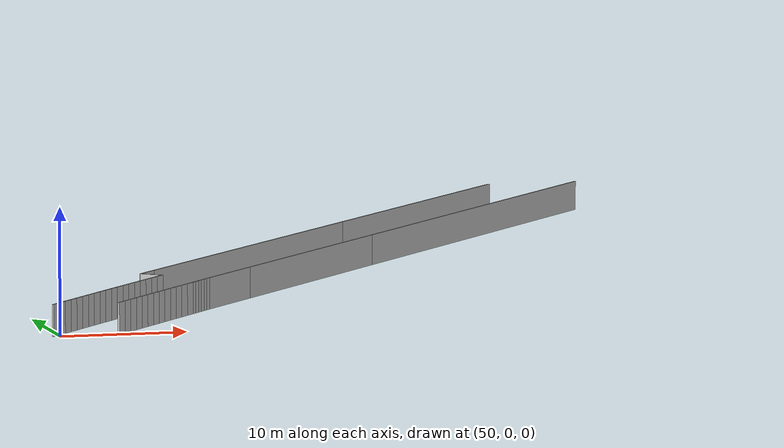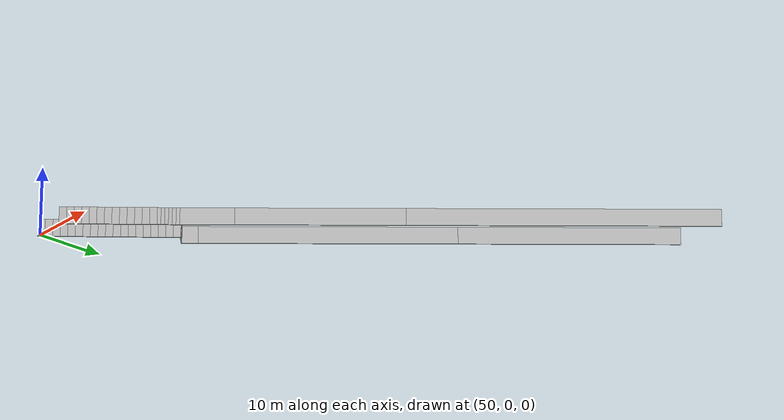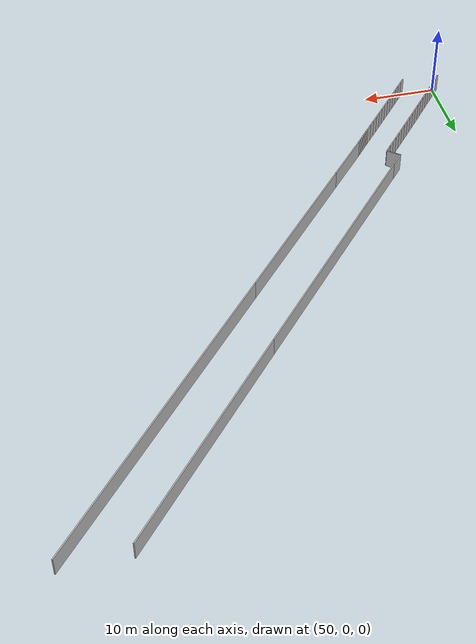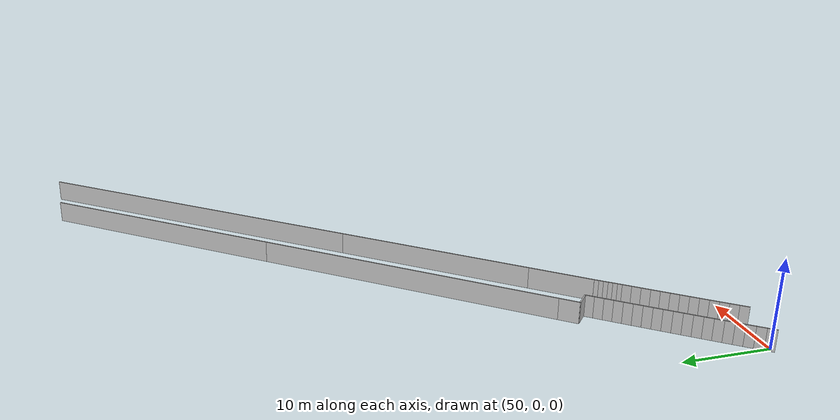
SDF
<?xml version="1.0" ?>
<sdf version="1.6">
  <model name="sps_0319">
    <pose frame="">0 0 0 0 -0 0</pose>
    <static>1</static>
    <self_collide>0</self_collide>
    <allow_auto_disable>0</allow_auto_disable>
    <link name="Wall35">
      <kinematic>0</kinematic>
      <gravity>1</gravity>
      <self_collide>0</self_collide>
      <collision name="collision">
        <geometry>
          <box>
            <size>30.2683 0.15 2.5</size>
          </box>
        </geometry>
        <pose frame="">0 0 0 0 -0 0</pose>
      </collision>
      <visual name="visual">
        <geometry>
          <box>
            <size>30.2683 0.15 2.5</size>
          </box>
        </geometry>
        <pose frame="">0 0 0 0 -0 0</pose>
        <cast_shadows>1</cast_shadows>
        <transparency>0.0</transparency>
      </visual>
      <pose frame="">94.2533 56.3468 1.25 0 0 -2.27376</pose>
    </link>
    <link name="Wall36">
      <kinematic>0</kinematic>
      <gravity>1</gravity>
      <self_collide>0</self_collide>
      <collision name="collision">
        <geometry>
          <box>
            <size>35.2684 0.15 2.5</size>
          </box>
        </geometry>
        <pose frame="">0 0 0 0 -0 0</pose>
      </collision>
      <visual name="visual">
        <geometry>
          <box>
            <size>35.2684 0.15 2.5</size>
          </box>
        </geometry>
        <pose frame="">0 0 0 0 -0 0</pose>
        <cast_shadows>1</cast_shadows>
        <transparency>0.0</transparency>
      </visual>
      <pose frame="">73.0693 31.3468 1.25 0 0 -2.27376</pose>
    </link>
    <link name="Wall37">
      <kinematic>0</kinematic>
      <gravity>1</gravity>
      <self_collide>0</self_collide>
      <collision name="collision">
        <geometry>
          <box>
            <size>2.2665 0.15 2.5</size>
          </box>
        </geometry>
        <pose frame="">0 0 0 0 -0 0</pose>
      </collision>
      <visual name="visual">
        <geometry>
          <box>
            <size>2.2665 0.15 2.5</size>
          </box>
        </geometry>
        <pose frame="">0 0 0 0 -0 0</pose>
        <cast_shadows>1</cast_shadows>
        <transparency>0.0</transparency>
      </visual>
      <pose frame="">60.9365 17.0285 1.25 0 0 -2.27376</pose>
    </link>
    <link name="Wall38">
      <kinematic>0</kinematic>
      <gravity>1</gravity>
      <self_collide>0</self_collide>
      <collision name="collision">
        <geometry>
          <box>
            <size>7.37648 0.15 2.5</size>
          </box>
        </geometry>
        <pose frame="">0 0 0 0 -0 0</pose>
      </collision>
      <visual name="visual">
        <geometry>
          <box>
            <size>7.37648 0.15 2.5</size>
          </box>
        </geometry>
        <pose frame="">0 0 0 0 -0 0</pose>
        <cast_shadows>1</cast_shadows>
        <transparency>0.0</transparency>
      </visual>
      <pose frame="">67.1869 15.0785 1.25 0 -0 0.868142</pose>
    </link>
    <link name="Wall39">
      <kinematic>0</kinematic>
      <gravity>1</gravity>
      <self_collide>0</self_collide>
      <collision name="collision">
        <geometry>
          <box>
            <size>23.0547 0.15 2.5</size>
          </box>
        </geometry>
        <pose frame="">0 0 0 0 -0 0</pose>
      </collision>
      <visual name="visual">
        <geometry>
          <box>
            <size>23.0547 0.15 2.5</size>
          </box>
        </geometry>
        <pose frame="">0 0 0 0 -0 0</pose>
        <cast_shadows>1</cast_shadows>
        <transparency>0.0</transparency>
      </visual>
      <pose frame="">77.0199 26.6899 1.25 0 -0 0.868142</pose>
    </link>
    <link name="Wall40">
      <kinematic>0</kinematic>
      <gravity>1</gravity>
      <self_collide>0</self_collide>
      <collision name="collision">
        <geometry>
          <box>
            <size>42.465 0.15 2.5</size>
          </box>
        </geometry>
        <pose frame="">0 0 0 0 -0 0</pose>
      </collision>
      <visual name="visual">
        <geometry>
          <box>
            <size>42.465 0.15 2.5</size>
          </box>
        </geometry>
        <pose frame="">0 0 0 0 -0 0</pose>
        <cast_shadows>1</cast_shadows>
        <transparency>0.0</transparency>
      </visual>
      <pose frame="">98.1909 51.6899 1.25 0 -0 0.868142</pose>
    </link>
    <link name="Wall368">
      <kinematic>0</kinematic>
      <gravity>1</gravity>
      <self_collide>0</self_collide>
      <collision name="collision">
        <geometry>
          <box>
            <size>1.92847 0.15 2.5</size>
          </box>
        </geometry>
        <pose frame="">0 0 0 0 -0 0</pose>
      </collision>
      <visual name="visual">
        <geometry>
          <box>
            <size>1.92847 0.15 2.5</size>
          </box>
        </geometry>
        <pose frame="">0 0 0 0 -0 0</pose>
        <cast_shadows>1</cast_shadows>
        <transparency>0.0</transparency>
      </visual>
      <pose frame="">60.9385 15.5393 1.25 0 0 -0.704654</pose>
    </link>
    <link name="Wall10012">
      <kinematic>0</kinematic>
      <gravity>1</gravity>
      <self_collide>0</self_collide>
      <collision name="collision">
        <geometry>
          <box>
            <size>1.01925 0.15 2.5</size>
          </box>
        </geometry>
        <pose frame="">0 0 0 0 -0 0</pose>
      </collision>
      <visual name="visual">
        <geometry>
          <box>
            <size>1.01925 0.15 2.5</size>
          </box>
        </geometry>
        <pose frame="">0 0 0 0 -0 0</pose>
        <cast_shadows>1</cast_shadows>
        <transparency>0.0</transparency>
      </visual>
      <pose frame="">61.346 14.5239 1.25 0 0 -2.26767</pose>
    </link>
    <link name="Wall10013">
      <kinematic>0</kinematic>
      <gravity>1</gravity>
      <self_collide>0</self_collide>
      <collision name="collision">
        <geometry>
          <box>
            <size>1.0192 0.15 2.5</size>
          </box>
        </geometry>
        <pose frame="">0 0 0 0 -0 0</pose>
      </collision>
      <visual name="visual">
        <geometry>
          <box>
            <size>1.0192 0.15 2.5</size>
          </box>
        </geometry>
        <pose frame="">0 0 0 0 -0 0</pose>
        <cast_shadows>1</cast_shadows>
        <transparency>0.0</transparency>
      </visual>
      <pose frame="">60.6922 13.742 1.25 0 0 -2.26677</pose>
    </link>
    <link name="Wall10014">
      <kinematic>0</kinematic>
      <gravity>1</gravity>
      <self_collide>0</self_collide>
      <collision name="collision">
        <geometry>
          <box>
            <size>1.01886 0.15 2.5</size>
          </box>
        </geometry>
        <pose frame="">0 0 0 0 -0 0</pose>
      </collision>
      <visual name="visual">
        <geometry>
          <box>
            <size>1.01886 0.15 2.5</size>
          </box>
        </geometry>
        <pose frame="">0 0 0 0 -0 0</pose>
        <cast_shadows>1</cast_shadows>
        <transparency>0.0</transparency>
      </visual>
      <pose frame="">60.0392 12.9596 1.25 0 0 -2.26572</pose>
    </link>
    <link name="Wall10015">
      <kinematic>0</kinematic>
      <gravity>1</gravity>
      <self_collide>0</self_collide>
      <collision name="collision">
        <geometry>
          <box>
            <size>1.01911 0.15 2.5</size>
          </box>
        </geometry>
        <pose frame="">0 0 0 0 -0 0</pose>
      </collision>
      <visual name="visual">
        <geometry>
          <box>
            <size>1.01911 0.15 2.5</size>
          </box>
        </geometry>
        <pose frame="">0 0 0 0 -0 0</pose>
        <cast_shadows>1</cast_shadows>
        <transparency>0.0</transparency>
      </visual>
      <pose frame="">59.3873 12.1765 1.25 0 0 -2.26442</pose>
    </link>
    <link name="Wall10016">
      <kinematic>0</kinematic>
      <gravity>1</gravity>
      <self_collide>0</self_collide>
      <collision name="collision">
        <geometry>
          <box>
            <size>1.01921 0.15 2.5</size>
          </box>
        </geometry>
        <pose frame="">0 0 0 0 -0 0</pose>
      </collision>
      <visual name="visual">
        <geometry>
          <box>
            <size>1.01921 0.15 2.5</size>
          </box>
        </geometry>
        <pose frame="">0 0 0 0 -0 0</pose>
        <cast_shadows>1</cast_shadows>
        <transparency>0.0</transparency>
      </visual>
      <pose frame="">58.7361 11.3925 1.25 0 0 -2.26341</pose>
    </link>
    <link name="Wall10017">
      <kinematic>0</kinematic>
      <gravity>1</gravity>
      <self_collide>0</self_collide>
      <collision name="collision">
        <geometry>
          <box>
            <size>1.0191 0.15 2.5</size>
          </box>
        </geometry>
        <pose frame="">0 0 0 0 -0 0</pose>
      </collision>
      <visual name="visual">
        <geometry>
          <box>
            <size>1.0191 0.15 2.5</size>
          </box>
        </geometry>
        <pose frame="">0 0 0 0 -0 0</pose>
        <cast_shadows>1</cast_shadows>
        <transparency>0.0</transparency>
      </visual>
      <pose frame="">58.0857 10.6078 1.25 0 0 -2.26225</pose>
    </link>
    <link name="Wall10018">
      <kinematic>0</kinematic>
      <gravity>1</gravity>
      <self_collide>0</self_collide>
      <collision name="collision">
        <geometry>
          <box>
            <size>1.01912 0.15 2.5</size>
          </box>
        </geometry>
        <pose frame="">0 0 0 0 -0 0</pose>
      </collision>
      <visual name="visual">
        <geometry>
          <box>
            <size>1.01912 0.15 2.5</size>
          </box>
        </geometry>
        <pose frame="">0 0 0 0 -0 0</pose>
        <cast_shadows>1</cast_shadows>
        <transparency>0.0</transparency>
      </visual>
      <pose frame="">57.4363 9.8224 1.25 0 0 -2.26115</pose>
    </link>
    <link name="Wall10019">
      <kinematic>0</kinematic>
      <gravity>1</gravity>
      <self_collide>0</self_collide>
      <collision name="collision">
        <geometry>
          <box>
            <size>1.01925 0.15 2.5</size>
          </box>
        </geometry>
        <pose frame="">0 0 0 0 -0 0</pose>
      </collision>
      <visual name="visual">
        <geometry>
          <box>
            <size>1.01925 0.15 2.5</size>
          </box>
        </geometry>
        <pose frame="">0 0 0 0 -0 0</pose>
        <cast_shadows>1</cast_shadows>
        <transparency>0.0</transparency>
      </visual>
      <pose frame="">56.7877 9.0363 1.25 0 0 -2.26027</pose>
    </link>
    <link name="Wall10020">
      <kinematic>0</kinematic>
      <gravity>1</gravity>
      <self_collide>0</self_collide>
      <collision name="collision">
        <geometry>
          <box>
            <size>1.0192 0.15 2.5</size>
          </box>
        </geometry>
        <pose frame="">0 0 0 0 -0 0</pose>
      </collision>
      <visual name="visual">
        <geometry>
          <box>
            <size>1.0192 0.15 2.5</size>
          </box>
        </geometry>
        <pose frame="">0 0 0 0 -0 0</pose>
        <cast_shadows>1</cast_shadows>
        <transparency>0.0</transparency>
      </visual>
      <pose frame="">56.1398 8.2495 1.25 0 0 -2.25907</pose>
    </link>
    <link name="Wall10021">
      <kinematic>0</kinematic>
      <gravity>1</gravity>
      <self_collide>0</self_collide>
      <collision name="collision">
        <geometry>
          <box>
            <size>1.01921 0.15 2.5</size>
          </box>
        </geometry>
        <pose frame="">0 0 0 0 -0 0</pose>
      </collision>
      <visual name="visual">
        <geometry>
          <box>
            <size>1.01921 0.15 2.5</size>
          </box>
        </geometry>
        <pose frame="">0 0 0 0 -0 0</pose>
        <cast_shadows>1</cast_shadows>
        <transparency>0.0</transparency>
      </visual>
      <pose frame="">55.4928 7.46199 1.25 0 0 -2.25805</pose>
    </link>
    <link name="Wall10022">
      <kinematic>0</kinematic>
      <gravity>1</gravity>
      <self_collide>0</self_collide>
      <collision name="collision">
        <geometry>
          <box>
            <size>1.01902 0.15 2.5</size>
          </box>
        </geometry>
        <pose frame="">0 0 0 0 -0 0</pose>
      </collision>
      <visual name="visual">
        <geometry>
          <box>
            <size>1.01902 0.15 2.5</size>
          </box>
        </geometry>
        <pose frame="">0 0 0 0 -0 0</pose>
        <cast_shadows>1</cast_shadows>
        <transparency>0.0</transparency>
      </visual>
      <pose frame="">54.8466 6.67387 1.25 0 0 -2.25697</pose>
    </link>
    <link name="Wall10023">
      <kinematic>0</kinematic>
      <gravity>1</gravity>
      <self_collide>0</self_collide>
      <collision name="collision">
        <geometry>
          <box>
            <size>1.01909 0.15 2.5</size>
          </box>
        </geometry>
        <pose frame="">0 0 0 0 -0 0</pose>
      </collision>
      <visual name="visual">
        <geometry>
          <box>
            <size>1.01909 0.15 2.5</size>
          </box>
        </geometry>
        <pose frame="">0 0 0 0 -0 0</pose>
        <cast_shadows>1</cast_shadows>
        <transparency>0.0</transparency>
      </visual>
      <pose frame="">54.2014 5.88509 1.25 0 0 -2.25583</pose>
    </link>
    <link name="Wall10024">
      <kinematic>0</kinematic>
      <gravity>1</gravity>
      <self_collide>0</self_collide>
      <collision name="collision">
        <geometry>
          <box>
            <size>1.0192 0.15 2.5</size>
          </box>
        </geometry>
        <pose frame="">0 0 0 0 -0 0</pose>
      </collision>
      <visual name="visual">
        <geometry>
          <box>
            <size>1.0192 0.15 2.5</size>
          </box>
        </geometry>
        <pose frame="">0 0 0 0 -0 0</pose>
        <cast_shadows>1</cast_shadows>
        <transparency>0.0</transparency>
      </visual>
      <pose frame="">53.5571 5.0955 1.25 0 0 -2.25473</pose>
    </link>
    <link name="Wall10025">
      <kinematic>0</kinematic>
      <gravity>1</gravity>
      <self_collide>0</self_collide>
      <collision name="collision">
        <geometry>
          <box>
            <size>1.01922 0.15 2.5</size>
          </box>
        </geometry>
        <pose frame="">0 0 0 0 -0 0</pose>
      </collision>
      <visual name="visual">
        <geometry>
          <box>
            <size>1.01922 0.15 2.5</size>
          </box>
        </geometry>
        <pose frame="">0 0 0 0 -0 0</pose>
        <cast_shadows>1</cast_shadows>
        <transparency>0.0</transparency>
      </visual>
      <pose frame="">52.9135 4.30519 1.25 0 0 -2.25371</pose>
    </link>
    <link name="Wall10026">
      <kinematic>0</kinematic>
      <gravity>1</gravity>
      <self_collide>0</self_collide>
      <collision name="collision">
        <geometry>
          <box>
            <size>1.01903 0.15 2.5</size>
          </box>
        </geometry>
        <pose frame="">0 0 0 0 -0 0</pose>
      </collision>
      <visual name="visual">
        <geometry>
          <box>
            <size>1.01903 0.15 2.5</size>
          </box>
        </geometry>
        <pose frame="">0 0 0 0 -0 0</pose>
        <cast_shadows>1</cast_shadows>
        <transparency>0.0</transparency>
      </visual>
      <pose frame="">52.2708 3.51427 1.25 0 0 -2.25263</pose>
    </link>
    <link name="Wall10027">
      <kinematic>0</kinematic>
      <gravity>1</gravity>
      <self_collide>0</self_collide>
      <collision name="collision">
        <geometry>
          <box>
            <size>1.01927 0.15 2.5</size>
          </box>
        </geometry>
        <pose frame="">0 0 0 0 -0 0</pose>
      </collision>
      <visual name="visual">
        <geometry>
          <box>
            <size>1.01927 0.15 2.5</size>
          </box>
        </geometry>
        <pose frame="">0 0 0 0 -0 0</pose>
        <cast_shadows>1</cast_shadows>
        <transparency>0.0</transparency>
      </visual>
      <pose frame="">51.6289 2.72267 1.25 0 0 -2.25167</pose>
    </link>
    <link name="Wall10028">
      <kinematic>0</kinematic>
      <gravity>1</gravity>
      <self_collide>0</self_collide>
      <collision name="collision">
        <geometry>
          <box>
            <size>1.01927 0.15 2.5</size>
          </box>
        </geometry>
        <pose frame="">0 0 0 0 -0 0</pose>
      </collision>
      <visual name="visual">
        <geometry>
          <box>
            <size>1.01927 0.15 2.5</size>
          </box>
        </geometry>
        <pose frame="">0 0 0 0 -0 0</pose>
        <cast_shadows>1</cast_shadows>
        <transparency>0.0</transparency>
      </visual>
      <pose frame="">50.9878 1.93028 1.25 0 0 -2.25044</pose>
    </link>
    <link name="Wall10029">
      <kinematic>0</kinematic>
      <gravity>1</gravity>
      <self_collide>0</self_collide>
      <collision name="collision">
        <geometry>
          <box>
            <size>1.01921 0.15 2.5</size>
          </box>
        </geometry>
        <pose frame="">0 0 0 0 -0 0</pose>
      </collision>
      <visual name="visual">
        <geometry>
          <box>
            <size>1.01921 0.15 2.5</size>
          </box>
        </geometry>
        <pose frame="">0 0 0 0 -0 0</pose>
        <cast_shadows>1</cast_shadows>
        <transparency>0.0</transparency>
      </visual>
      <pose frame="">50.3476 1.13719 1.25 0 0 -2.24941</pose>
    </link>
    <link name="Wall10030">
      <kinematic>0</kinematic>
      <gravity>1</gravity>
      <self_collide>0</self_collide>
      <collision name="collision">
        <geometry>
          <box>
            <size>1.01907 0.15 2.5</size>
          </box>
        </geometry>
        <pose frame="">0 0 0 0 -0 0</pose>
      </collision>
      <visual name="visual">
        <geometry>
          <box>
            <size>1.01907 0.15 2.5</size>
          </box>
        </geometry>
        <pose frame="">0 0 0 0 -0 0</pose>
        <cast_shadows>1</cast_shadows>
        <transparency>0.0</transparency>
      </visual>
      <pose frame="">49.7083 0.34349 1.25 0 0 -2.24829</pose>
    </link>
    <link name="Wall10054">
      <kinematic>0</kinematic>
      <gravity>1</gravity>
      <self_collide>0</self_collide>
      <collision name="collision">
        <geometry>
          <box>
            <size>0.507656 0.15 2.5</size>
          </box>
        </geometry>
        <pose frame="">0 0 0 0 -0 0</pose>
      </collision>
      <visual name="visual">
        <geometry>
          <box>
            <size>0.507656 0.15 2.5</size>
          </box>
        </geometry>
        <pose frame="">0 0 0 0 -0 0</pose>
        <cast_shadows>1</cast_shadows>
        <transparency>0.0</transparency>
      </visual>
      <pose frame="">64.6415 12.0684 1.25 0 0 -2.26246</pose>
    </link>
    <link name="Wall10055">
      <kinematic>0</kinematic>
      <gravity>1</gravity>
      <self_collide>0</self_collide>
      <collision name="collision">
        <geometry>
          <box>
            <size>0.507545 0.15 2.5</size>
          </box>
        </geometry>
        <pose frame="">0 0 0 0 -0 0</pose>
      </collision>
      <visual name="visual">
        <geometry>
          <box>
            <size>0.507545 0.15 2.5</size>
          </box>
        </geometry>
        <pose frame="">0 0 0 0 -0 0</pose>
        <cast_shadows>1</cast_shadows>
        <transparency>0.0</transparency>
      </visual>
      <pose frame="">64.3191 11.6764 1.25 0 0 -2.25594</pose>
    </link>
    <link name="Wall10056">
      <kinematic>0</kinematic>
      <gravity>1</gravity>
      <self_collide>0</self_collide>
      <collision name="collision">
        <geometry>
          <box>
            <size>0.50752 0.15 2.5</size>
          </box>
        </geometry>
        <pose frame="">0 0 0 0 -0 0</pose>
      </collision>
      <visual name="visual">
        <geometry>
          <box>
            <size>0.50752 0.15 2.5</size>
          </box>
        </geometry>
        <pose frame="">0 0 0 0 -0 0</pose>
        <cast_shadows>1</cast_shadows>
        <transparency>0.0</transparency>
      </visual>
      <pose frame="">63.9993 11.2823 1.25 0 0 -2.24901</pose>
    </link>
    <link name="Wall10057">
      <kinematic>0</kinematic>
      <gravity>1</gravity>
      <self_collide>0</self_collide>
      <collision name="collision">
        <geometry>
          <box>
            <size>0.507367 0.15 2.5</size>
          </box>
        </geometry>
        <pose frame="">0 0 0 0 -0 0</pose>
      </collision>
      <visual name="visual">
        <geometry>
          <box>
            <size>0.507367 0.15 2.5</size>
          </box>
        </geometry>
        <pose frame="">0 0 0 0 -0 0</pose>
        <cast_shadows>1</cast_shadows>
        <transparency>0.0</transparency>
      </visual>
      <pose frame="">63.681 10.8871 1.25 0 0 -2.24864</pose>
    </link>
    <link name="Wall10058">
      <kinematic>0</kinematic>
      <gravity>1</gravity>
      <self_collide>0</self_collide>
      <collision name="collision">
        <geometry>
          <box>
            <size>0.507507 0.15 2.5</size>
          </box>
        </geometry>
        <pose frame="">0 0 0 0 -0 0</pose>
      </collision>
      <visual name="visual">
        <geometry>
          <box>
            <size>0.507507 0.15 2.5</size>
          </box>
        </geometry>
        <pose frame="">0 0 0 0 -0 0</pose>
        <cast_shadows>1</cast_shadows>
        <transparency>0.0</transparency>
      </visual>
      <pose frame="">63.3617 10.4927 1.25 0 0 -2.25414</pose>
    </link>
    <link name="Wall10059">
      <kinematic>0</kinematic>
      <gravity>1</gravity>
      <self_collide>0</self_collide>
      <collision name="collision">
        <geometry>
          <box>
            <size>0.50735 0.15 2.5</size>
          </box>
        </geometry>
        <pose frame="">0 0 0 0 -0 0</pose>
      </collision>
      <visual name="visual">
        <geometry>
          <box>
            <size>0.50735 0.15 2.5</size>
          </box>
        </geometry>
        <pose frame="">0 0 0 0 -0 0</pose>
        <cast_shadows>1</cast_shadows>
        <transparency>0.0</transparency>
      </visual>
      <pose frame="">63.0402 10.1001 1.25 0 0 -2.25984</pose>
    </link>
    <link name="Wall10060">
      <kinematic>0</kinematic>
      <gravity>1</gravity>
      <self_collide>0</self_collide>
      <collision name="collision">
        <geometry>
          <box>
            <size>1.01436 0.15 2.5</size>
          </box>
        </geometry>
        <pose frame="">0 0 0 0 -0 0</pose>
      </collision>
      <visual name="visual">
        <geometry>
          <box>
            <size>1.01436 0.15 2.5</size>
          </box>
        </geometry>
        <pose frame="">0 0 0 0 -0 0</pose>
        <cast_shadows>1</cast_shadows>
        <transparency>0.0</transparency>
      </visual>
      <pose frame="">62.5546 9.5143 1.25 0 0 -2.26433</pose>
    </link>
    <link name="Wall10061">
      <kinematic>0</kinematic>
      <gravity>1</gravity>
      <self_collide>0</self_collide>
      <collision name="collision">
        <geometry>
          <box>
            <size>1.01397 0.15 2.5</size>
          </box>
        </geometry>
        <pose frame="">0 0 0 0 -0 0</pose>
      </collision>
      <visual name="visual">
        <geometry>
          <box>
            <size>1.01397 0.15 2.5</size>
          </box>
        </geometry>
        <pose frame="">0 0 0 0 -0 0</pose>
        <cast_shadows>1</cast_shadows>
        <transparency>0.0</transparency>
      </visual>
      <pose frame="">61.9067 8.73408 1.25 0 0 -2.26331</pose>
    </link>
    <link name="Wall10062">
      <kinematic>0</kinematic>
      <gravity>1</gravity>
      <self_collide>0</self_collide>
      <collision name="collision">
        <geometry>
          <box>
            <size>1.01434 0.15 2.5</size>
          </box>
        </geometry>
        <pose frame="">0 0 0 0 -0 0</pose>
      </collision>
      <visual name="visual">
        <geometry>
          <box>
            <size>1.01434 0.15 2.5</size>
          </box>
        </geometry>
        <pose frame="">0 0 0 0 -0 0</pose>
        <cast_shadows>1</cast_shadows>
        <transparency>0.0</transparency>
      </visual>
      <pose frame="">61.2596 7.9532 1.25 0 0 -2.26224</pose>
    </link>
    <link name="Wall10063">
      <kinematic>0</kinematic>
      <gravity>1</gravity>
      <self_collide>0</self_collide>
      <collision name="collision">
        <geometry>
          <box>
            <size>1.01423 0.15 2.5</size>
          </box>
        </geometry>
        <pose frame="">0 0 0 0 -0 0</pose>
      </collision>
      <visual name="visual">
        <geometry>
          <box>
            <size>1.01423 0.15 2.5</size>
          </box>
        </geometry>
        <pose frame="">0 0 0 0 -0 0</pose>
        <cast_shadows>1</cast_shadows>
        <transparency>0.0</transparency>
      </visual>
      <pose frame="">60.6133 7.17149 1.25 0 0 -2.26107</pose>
    </link>
    <link name="Wall10064">
      <kinematic>0</kinematic>
      <gravity>1</gravity>
      <self_collide>0</self_collide>
      <collision name="collision">
        <geometry>
          <box>
            <size>1.01411 0.15 2.5</size>
          </box>
        </geometry>
        <pose frame="">0 0 0 0 -0 0</pose>
      </collision>
      <visual name="visual">
        <geometry>
          <box>
            <size>1.01411 0.15 2.5</size>
          </box>
        </geometry>
        <pose frame="">0 0 0 0 -0 0</pose>
        <cast_shadows>1</cast_shadows>
        <transparency>0.0</transparency>
      </visual>
      <pose frame="">59.9679 6.38917 1.25 0 0 -2.26008</pose>
    </link>
    <link name="Wall10065">
      <kinematic>0</kinematic>
      <gravity>1</gravity>
      <self_collide>0</self_collide>
      <collision name="collision">
        <geometry>
          <box>
            <size>1.01426 0.15 2.5</size>
          </box>
        </geometry>
        <pose frame="">0 0 0 0 -0 0</pose>
      </collision>
      <visual name="visual">
        <geometry>
          <box>
            <size>1.01426 0.15 2.5</size>
          </box>
        </geometry>
        <pose frame="">0 0 0 0 -0 0</pose>
        <cast_shadows>1</cast_shadows>
        <transparency>0.0</transparency>
      </visual>
      <pose frame="">59.3234 5.60618 1.25 0 0 -2.25902</pose>
    </link>
    <link name="Wall10066">
      <kinematic>0</kinematic>
      <gravity>1</gravity>
      <self_collide>0</self_collide>
      <collision name="collision">
        <geometry>
          <box>
            <size>1.01407 0.15 2.5</size>
          </box>
        </geometry>
        <pose frame="">0 0 0 0 -0 0</pose>
      </collision>
      <visual name="visual">
        <geometry>
          <box>
            <size>1.01407 0.15 2.5</size>
          </box>
        </geometry>
        <pose frame="">0 0 0 0 -0 0</pose>
        <cast_shadows>1</cast_shadows>
        <transparency>0.0</transparency>
      </visual>
      <pose frame="">58.6796 4.82249 1.25 0 0 -2.25785</pose>
    </link>
    <link name="Wall10067">
      <kinematic>0</kinematic>
      <gravity>1</gravity>
      <self_collide>0</self_collide>
      <collision name="collision">
        <geometry>
          <box>
            <size>1.0143 0.15 2.5</size>
          </box>
        </geometry>
        <pose frame="">0 0 0 0 -0 0</pose>
      </collision>
      <visual name="visual">
        <geometry>
          <box>
            <size>1.0143 0.15 2.5</size>
          </box>
        </geometry>
        <pose frame="">0 0 0 0 -0 0</pose>
        <cast_shadows>1</cast_shadows>
        <transparency>0.0</transparency>
      </visual>
      <pose frame="">58.0368 4.0381 1.25 0 0 -2.25689</pose>
    </link>
    <link name="Wall10068">
      <kinematic>0</kinematic>
      <gravity>1</gravity>
      <self_collide>0</self_collide>
      <collision name="collision">
        <geometry>
          <box>
            <size>1.01431 0.15 2.5</size>
          </box>
        </geometry>
        <pose frame="">0 0 0 0 -0 0</pose>
      </collision>
      <visual name="visual">
        <geometry>
          <box>
            <size>1.01431 0.15 2.5</size>
          </box>
        </geometry>
        <pose frame="">0 0 0 0 -0 0</pose>
        <cast_shadows>1</cast_shadows>
        <transparency>0.0</transparency>
      </visual>
      <pose frame="">57.3946 3.253 1.25 0 0 -2.25595</pose>
    </link>
    <link name="Wall10069">
      <kinematic>0</kinematic>
      <gravity>1</gravity>
      <self_collide>0</self_collide>
      <collision name="collision">
        <geometry>
          <box>
            <size>1.01397 0.15 2.5</size>
          </box>
        </geometry>
        <pose frame="">0 0 0 0 -0 0</pose>
      </collision>
      <visual name="visual">
        <geometry>
          <box>
            <size>1.01397 0.15 2.5</size>
          </box>
        </geometry>
        <pose frame="">0 0 0 0 -0 0</pose>
        <cast_shadows>1</cast_shadows>
        <transparency>0.0</transparency>
      </visual>
      <pose frame="">56.7533 2.4673 1.25 0 0 -2.25459</pose>
    </link>
    <link name="Wall10070">
      <kinematic>0</kinematic>
      <gravity>1</gravity>
      <self_collide>0</self_collide>
      <collision name="collision">
        <geometry>
          <box>
            <size>1.0141 0.15 2.5</size>
          </box>
        </geometry>
        <pose frame="">0 0 0 0 -0 0</pose>
      </collision>
      <visual name="visual">
        <geometry>
          <box>
            <size>1.0141 0.15 2.5</size>
          </box>
        </geometry>
        <pose frame="">0 0 0 0 -0 0</pose>
        <cast_shadows>1</cast_shadows>
        <transparency>0.0</transparency>
      </visual>
      <pose frame="">56.1131 1.68098 1.25 0 0 -2.25379</pose>
    </link>
    <link name="Wall10071">
      <kinematic>0</kinematic>
      <gravity>1</gravity>
      <self_collide>0</self_collide>
      <collision name="collision">
        <geometry>
          <box>
            <size>1.0142 0.15 2.5</size>
          </box>
        </geometry>
        <pose frame="">0 0 0 0 -0 0</pose>
      </collision>
      <visual name="visual">
        <geometry>
          <box>
            <size>1.0142 0.15 2.5</size>
          </box>
        </geometry>
        <pose frame="">0 0 0 0 -0 0</pose>
        <cast_shadows>1</cast_shadows>
        <transparency>0.0</transparency>
      </visual>
      <pose frame="">55.4736 0.893874 1.25 0 0 -2.25239</pose>
    </link>
    <link name="Wall10072">
      <kinematic>0</kinematic>
      <gravity>1</gravity>
      <self_collide>0</self_collide>
      <collision name="collision">
        <geometry>
          <box>
            <size>1.01433 0.15 2.5</size>
          </box>
        </geometry>
        <pose frame="">0 0 0 0 -0 0</pose>
      </collision>
      <visual name="visual">
        <geometry>
          <box>
            <size>1.01433 0.15 2.5</size>
          </box>
        </geometry>
        <pose frame="">0 0 0 0 -0 0</pose>
        <cast_shadows>1</cast_shadows>
        <transparency>0.0</transparency>
      </visual>
      <pose frame="">54.8349 0.105971 1.25 0 0 -2.25159</pose>
    </link>
  </model>
</sdf>
